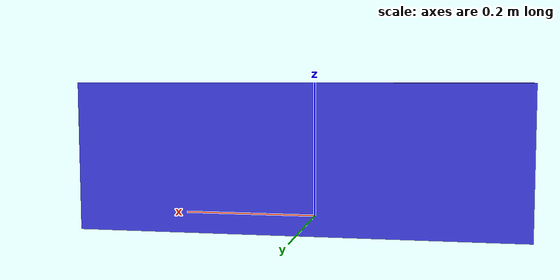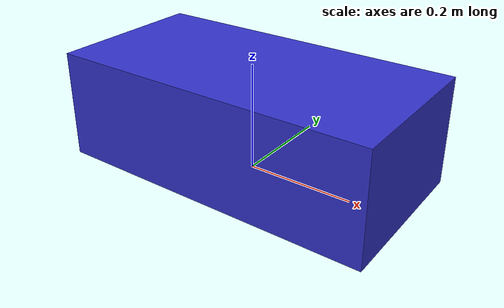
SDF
<?xml version="1.0"?>
<sdf version="1.6">
  <model name="dog2">
    <static>false</static>
    <link name="base_link">
      <pose>0 0 0.1 0 0 0</pose>
      <inertial>
        <mass>10.0</mass>
        <inertia>
          <ixx>0.1</ixx><iyy>0.1</iyy><izz>0.1</izz>
          <ixy>0</ixy><ixz>0</ixz><iyz>0</iyz>
        </inertia>
      </inertial>
      <collision name="collision">
        <geometry>
          <box><size>0.6 0.3 0.2</size></box>
        </geometry>
      </collision>
      <visual name="visual">
        <geometry>
          <box><size>0.6 0.3 0.2</size></box>
        </geometry>
        <material>
          <ambient>0.2 0.2 0.8 1</ambient>
          <diffuse>0.2 0.2 0.8 1</diffuse>
        </material>
      </visual>
    </link>
  </model>
</sdf>
